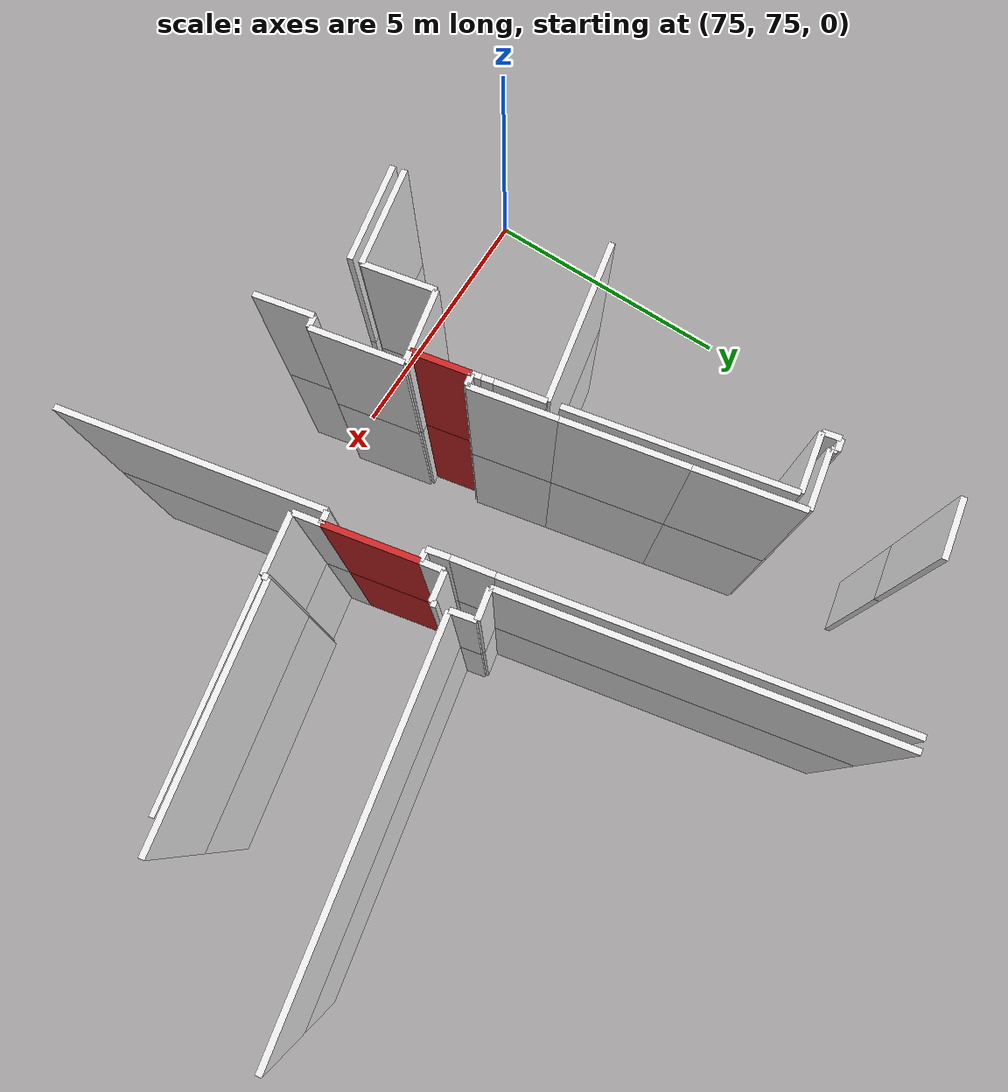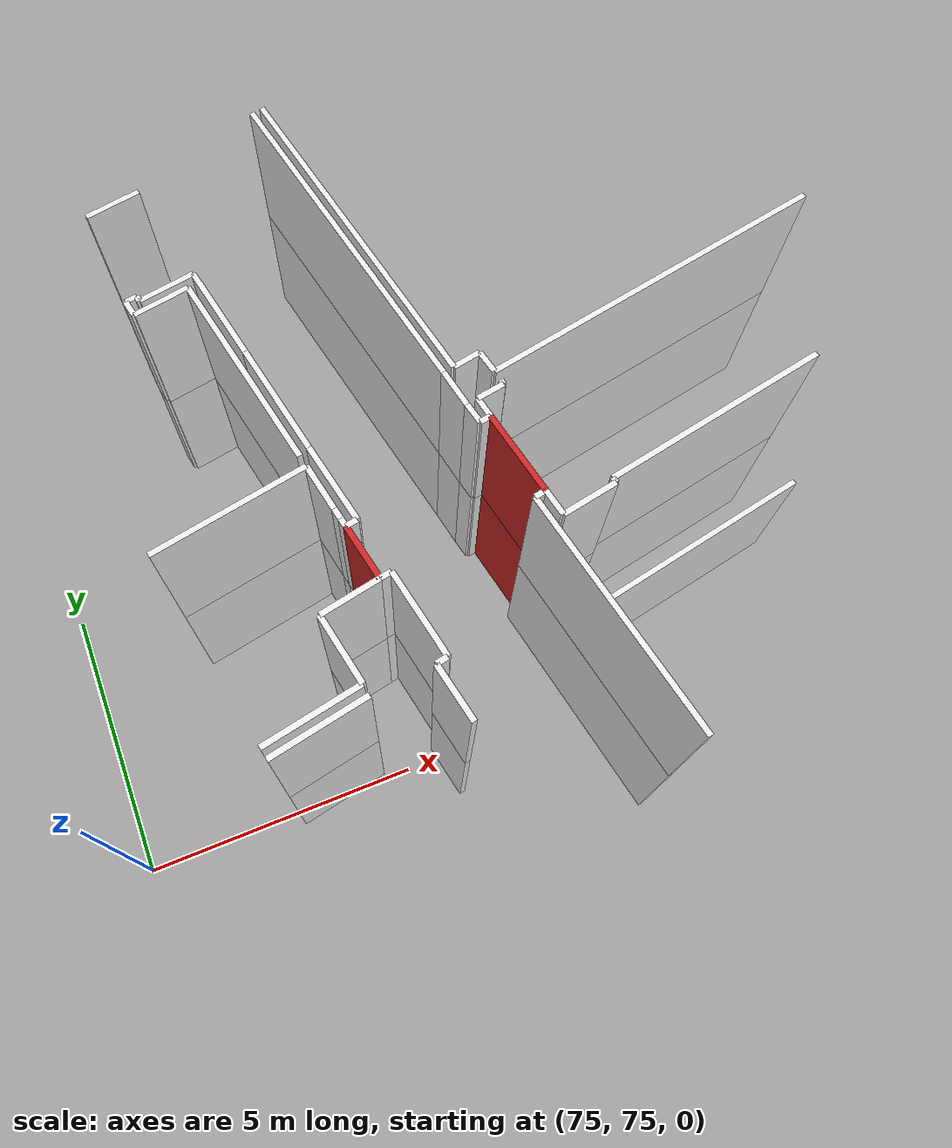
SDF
<sdf version="1.6">
 <world name="default">
  <model name="wall_80.2_77.2_1.5">
   <static>true</static>
   <pose>80.19499999997788 77.22500000009313 1.5 0 0 -1.3773690000310248</pose>
   <link name="link">
    <visual name="visual">
     <geometry><box><size>0.9884331031966657 0.1 3</size></box></geometry>
     <material>
      <script><uri>file://media/materials/scripts/gazebo.material</uri><name>Gazebo/Red</name></script>
     </material>
    </visual>
    <collision name="collision"><geometry><box><size>0.9884331031966657 0.1 3</size></box></geometry></collision>
   </link>
  </model>
  <model name="wall_83.0_77.9_1.5">
   <static>true</static>
   <pose>83.01999999998952 77.89500000001863 1.5 0 0 -1.3721104451170056</pose>
   <link name="link">
    <visual name="visual">
     <geometry><box><size>1.51990131280261 0.1 3</size></box></geometry>
     <material>
      <script><uri>file://media/materials/scripts/gazebo.material</uri><name>Gazebo/Red</name></script>
     </material>
    </visual>
    <collision name="collision"><geometry><box><size>1.51990131280261 0.1 3</size></box></geometry></collision>
   </link>
  </model>
  <model name="wall_80.2_77.2_4.5">
   <static>true</static>
   <pose>80.19499999997788 77.22500000009313 4.5 0 0 -1.3773690000310248</pose>
   <link name="link">
    <visual name="visual">
     <geometry><box><size>0.9884331031966657 0.1 3</size></box></geometry>
     <material>
      <script><uri>file://media/materials/scripts/gazebo.material</uri><name>Gazebo/Red</name></script>
     </material>
    </visual>
    <collision name="collision"><geometry><box><size>0.9884331031966657 0.1 3</size></box></geometry></collision>
   </link>
  </model>
  <model name="wall_83.0_77.9_4.5">
   <static>true</static>
   <pose>83.01999999998952 77.89500000001863 4.5 0 0 -1.3721104451170056</pose>
   <link name="link">
    <visual name="visual">
     <geometry><box><size>1.51990131280261 0.1 3</size></box></geometry>
     <material>
      <script><uri>file://media/materials/scripts/gazebo.material</uri><name>Gazebo/Red</name></script>
     </material>
    </visual>
    <collision name="collision"><geometry><box><size>1.51990131280261 0.1 3</size></box></geometry></collision>
   </link>
  </model>
  <model name="wall_79.8_76.6_1.5">
   <static>true</static>
   <pose>79.77499999999418 76.63500000000931 1.5 0 0 -2.9404657673681704</pose>
   <link name="link">
    <visual name="visual">
     <geometry><box><size>1.0511898021373587 0.1 3</size></box></geometry>
     <material>
      <script><uri>file://media/materials/scripts/gazebo.material</uri><name>Gazebo/White</name></script>
     </material>
    </visual>
    <collision name="collision"><geometry><box><size>1.0511898021373587 0.1 3</size></box></geometry></collision>
   </link>
  </model>
  <model name="wall_79.4_75.9_1.5">
   <static>true</static>
   <pose>79.38000000000466 75.92999999993481 1.5 0 0 -1.3734007669077033</pose>
   <link name="link">
    <visual name="visual">
     <geometry><box><size>1.2237646829864708 0.1 3</size></box></geometry>
     <material>
      <script><uri>file://media/materials/scripts/gazebo.material</uri><name>Gazebo/White</name></script>
     </material>
    </visual>
    <collision name="collision"><geometry><box><size>1.2237646829864708 0.1 3</size></box></geometry></collision>
   </link>
  </model>
  <model name="wall_78.7_75.2_1.5">
   <static>true</static>
   <pose>78.66500000000815 75.16500000003725 1.5 0 0 -2.946501237082923</pose>
   <link name="link">
    <visual name="visual">
     <geometry><box><size>1.7022925717968513 0.1 3</size></box></geometry>
     <material>
      <script><uri>file://media/materials/scripts/gazebo.material</uri><name>Gazebo/White</name></script>
     </material>
    </visual>
    <collision name="collision"><geometry><box><size>1.7022925717968513 0.1 3</size></box></geometry></collision>
   </link>
  </model>
  <model name="wall_78.5_78.6_1.5">
   <static>true</static>
   <pose>78.51999999998952 78.61499999999069 1.5 0 0 0.19383178298877288</pose>
   <link name="link">
    <visual name="visual">
     <geometry><box><size>2.7515268488324223 0.1 3</size></box></geometry>
     <material>
      <script><uri>file://media/materials/scripts/gazebo.material</uri><name>Gazebo/White</name></script>
     </material>
    </visual>
    <collision name="collision"><geometry><box><size>2.7515268488324223 0.1 3</size></box></geometry></collision>
   </link>
  </model>
  <model name="wall_80.0_78.5_1.5">
   <static>true</static>
   <pose>79.95000000001164 78.46499999985099 1.5 0 0 -1.3803612113601613</pose>
   <link name="link">
    <visual name="visual">
     <geometry><box><size>0.8452810184394953 0.1 3</size></box></geometry>
     <material>
      <script><uri>file://media/materials/scripts/gazebo.material</uri><name>Gazebo/White</name></script>
     </material>
    </visual>
    <collision name="collision"><geometry><box><size>0.8452810184394953 0.1 3</size></box></geometry></collision>
   </link>
  </model>
  <model name="wall_80.1_78.0_1.5">
   <static>true</static>
   <pose>80.05000000001746 77.95499999984168 1.5 0 0 -1.363300100406013</pose>
   <link name="link">
    <visual name="visual">
     <geometry><box><size>0.19416487833047835 0.1 3</size></box></geometry>
     <material>
      <script><uri>file://media/materials/scripts/gazebo.material</uri><name>Gazebo/White</name></script>
     </material>
    </visual>
    <collision name="collision"><geometry><box><size>0.19416487833047835 0.1 3</size></box></geometry></collision>
   </link>
  </model>
  <model name="wall_80.1_77.8_1.5">
   <static>true</static>
   <pose>80.08499999999185 77.78499999991618 1.5 0 0 -1.373400767019641</pose>
   <link name="link">
    <visual name="visual">
     <geometry><box><size>0.15297058531052382 0.1 3</size></box></geometry>
     <material>
      <script><uri>file://media/materials/scripts/gazebo.material</uri><name>Gazebo/White</name></script>
     </material>
    </visual>
    <collision name="collision"><geometry><box><size>0.15297058531052382 0.1 3</size></box></geometry></collision>
   </link>
  </model>
  <model name="wall_79.5_80.9_1.5">
   <static>true</static>
   <pose>79.46499999999651 80.88500000000931 1.5 0 0 1.7703218088940849</pose>
   <link name="link">
    <visual name="visual">
     <geometry><box><size>3.683069372020626 0.1 3</size></box></geometry>
     <material>
      <script><uri>file://media/materials/scripts/gazebo.material</uri><name>Gazebo/White</name></script>
     </material>
    </visual>
    <collision name="collision"><geometry><box><size>3.683069372020626 0.1 3</size></box></geometry></collision>
   </link>
  </model>
  <model name="wall_78.6_82.6_1.5">
   <static>true</static>
   <pose>78.60999999998603 82.59499999997206 1.5 0 0 -2.950090935171577</pose>
   <link name="link">
    <visual name="visual">
     <geometry><box><size>0.9982484660355146 0.1 3</size></box></geometry>
     <material>
      <script><uri>file://media/materials/scripts/gazebo.material</uri><name>Gazebo/White</name></script>
     </material>
    </visual>
    <collision name="collision"><geometry><box><size>0.9982484660355146 0.1 3</size></box></geometry></collision>
   </link>
  </model>
  <model name="wall_78.1_82.6_1.5">
   <static>true</static>
   <pose>78.08999999999651 82.64500000001863 1.5 0 0 1.7748143063542596</pose>
   <link name="link">
    <visual name="visual">
     <geometry><box><size>0.2961418579352255 0.1 3</size></box></geometry>
     <material>
      <script><uri>file://media/materials/scripts/gazebo.material</uri><name>Gazebo/White</name></script>
     </material>
    </visual>
    <collision name="collision"><geometry><box><size>0.2961418579352255 0.1 3</size></box></geometry></collision>
   </link>
  </model>
  <model name="wall_78.7_75.0_1.5">
   <static>true</static>
   <pose>78.7049999999872 74.97500000009313 1.5 0 0 -2.946501237082923</pose>
   <link name="link">
    <visual name="visual">
     <geometry><box><size>1.7022925717968513 0.1 3</size></box></geometry>
     <material>
      <script><uri>file://media/materials/scripts/gazebo.material</uri><name>Gazebo/White</name></script>
     </material>
    </visual>
    <collision name="collision"><geometry><box><size>1.7022925717968513 0.1 3</size></box></geometry></collision>
   </link>
  </model>
  <model name="wall_85.8_76.3_1.5">
   <static>true</static>
   <pose>85.83499999999185 76.28499999991618 1.5 0 0 -2.946597089187742</pose>
   <link name="link">
    <visual name="visual">
     <geometry><box><size>4.902917498739577 0.1 3</size></box></geometry>
     <material>
      <script><uri>file://media/materials/scripts/gazebo.material</uri><name>Gazebo/White</name></script>
     </material>
    </visual>
    <collision name="collision"><geometry><box><size>4.902917498739577 0.1 3</size></box></geometry></collision>
   </link>
  </model>
  <model name="wall_80.4_76.8_1.5">
   <static>true</static>
   <pose>80.38999999998487 76.76000000000931 1.5 0 0 -2.944197095810762</pose>
   <link name="link">
    <visual name="visual">
     <geometry><box><size>0.20396078047110908 0.1 3</size></box></geometry>
     <material>
      <script><uri>file://media/materials/scripts/gazebo.material</uri><name>Gazebo/White</name></script>
     </material>
    </visual>
    <collision name="collision"><geometry><box><size>0.20396078047110908 0.1 3</size></box></geometry></collision>
   </link>
  </model>
  <model name="wall_80.2_77.7_1.5">
   <static>true</static>
   <pose>80.19999999998254 77.72999999998137 1.5 0 0 0.19739556001778746</pose>
   <link name="link">
    <visual name="visual">
     <geometry><box><size>0.20396078056243275 0.1 3</size></box></geometry>
     <material>
      <script><uri>file://media/materials/scripts/gazebo.material</uri><name>Gazebo/White</name></script>
     </material>
    </visual>
    <collision name="collision"><geometry><box><size>0.20396078056243275 0.1 3</size></box></geometry></collision>
   </link>
  </model>
  <model name="wall_80.2_78.5_1.5">
   <static>true</static>
   <pose>80.15499999999884 78.45999999996275 1.5 0 0 1.772251404259705</pose>
   <link name="link">
    <visual name="visual">
     <geometry><box><size>1.449310180663977 0.1 3</size></box></geometry>
     <material>
      <script><uri>file://media/materials/scripts/gazebo.material</uri><name>Gazebo/White</name></script>
     </material>
    </visual>
    <collision name="collision"><geometry><box><size>1.449310180663977 0.1 3</size></box></geometry></collision>
   </link>
  </model>
  <model name="wall_79.8_80.2_1.5">
   <static>true</static>
   <pose>79.80999999999767 80.17500000004657 1.5 0 0 1.7672349491259145</pose>
   <link name="link">
    <visual name="visual">
     <geometry><box><size>2.0494145507905532 0.1 3</size></box></geometry>
     <material>
      <script><uri>file://media/materials/scripts/gazebo.material</uri><name>Gazebo/White</name></script>
     </material>
    </visual>
    <collision name="collision"><geometry><box><size>2.0494145507905532 0.1 3</size></box></geometry></collision>
   </link>
  </model>
  <model name="wall_79.4_82.1_1.5">
   <static>true</static>
   <pose>79.43499999999767 82.05000000004657 1.5 0 0 1.7692968585848012</pose>
   <link name="link">
    <visual name="visual">
     <geometry><box><size>1.7748521062728133 0.1 3</size></box></geometry>
     <material>
      <script><uri>file://media/materials/scripts/gazebo.material</uri><name>Gazebo/White</name></script>
     </material>
    </visual>
    <collision name="collision"><geometry><box><size>1.7748521062728133 0.1 3</size></box></geometry></collision>
   </link>
  </model>
  <model name="wall_78.8_82.8_1.5">
   <static>true</static>
   <pose>78.77000000001863 82.82499999995343 1.5 0 0 -2.950090935171577</pose>
   <link name="link">
    <visual name="visual">
     <geometry><box><size>0.9982484660355146 0.1 3</size></box></geometry>
     <material>
      <script><uri>file://media/materials/scripts/gazebo.material</uri><name>Gazebo/White</name></script>
     </material>
    </visual>
    <collision name="collision"><geometry><box><size>0.9982484660355146 0.1 3</size></box></geometry></collision>
   </link>
  </model>
  <model name="wall_78.3_82.8_1.5">
   <static>true</static>
   <pose>78.27000000001863 82.78000000002794 1.5 0 0 1.7681918866447774</pose>
   <link name="link">
    <visual name="visual">
     <geometry><box><size>0.10198039036683233 0.1 3</size></box></geometry>
     <material>
      <script><uri>file://media/materials/scripts/gazebo.material</uri><name>Gazebo/White</name></script>
     </material>
    </visual>
    <collision name="collision"><geometry><box><size>0.10198039036683233 0.1 3</size></box></geometry></collision>
   </link>
  </model>
  <model name="wall_78.2_82.8_1.5">
   <static>true</static>
   <pose>78.16000000000349 82.81000000005588 1.5 0 0 -2.9441970935720057</pose>
   <link name="link">
    <visual name="visual">
     <geometry><box><size>0.20396078056243275 0.1 3</size></box></geometry>
     <material>
      <script><uri>file://media/materials/scripts/gazebo.material</uri><name>Gazebo/White</name></script>
     </material>
    </visual>
    <collision name="collision"><geometry><box><size>0.20396078056243275 0.1 3</size></box></geometry></collision>
   </link>
  </model>
  <model name="wall_78.4_84.8_1.5">
   <static>true</static>
   <pose>78.38000000000466 84.78499999991618 1.5 0 0 0.19150171841821614</pose>
   <link name="link">
    <visual name="visual">
     <geometry><box><size>0.9982484660355146 0.1 3</size></box></geometry>
     <material>
      <script><uri>file://media/materials/scripts/gazebo.material</uri><name>Gazebo/White</name></script>
     </material>
    </visual>
    <collision name="collision"><geometry><box><size>0.9982484660355146 0.1 3</size></box></geometry></collision>
   </link>
  </model>
  <model name="wall_81.8_82.7_1.5">
   <static>true</static>
   <pose>81.84999999997672 82.72999999998137 1.5 0 0 -1.3721523281490677</pose>
   <link name="link">
    <visual name="visual">
     <geometry><box><size>6.283565866752152 0.1 3</size></box></geometry>
     <material>
      <script><uri>file://media/materials/scripts/gazebo.material</uri><name>Gazebo/White</name></script>
     </material>
    </visual>
    <collision name="collision"><geometry><box><size>6.283565866752152 0.1 3</size></box></geometry></collision>
   </link>
  </model>
  <model name="wall_82.5_79.3_1.5">
   <static>true</static>
   <pose>82.53499999997439 79.31000000005588 1.5 0 0 -1.3818991458298349</pose>
   <link name="link">
    <visual name="visual">
     <geometry><box><size>0.6923149569349915 0.1 3</size></box></geometry>
     <material>
      <script><uri>file://media/materials/scripts/gazebo.material</uri><name>Gazebo/White</name></script>
     </material>
    </visual>
    <collision name="collision"><geometry><box><size>0.6923149569349915 0.1 3</size></box></geometry></collision>
   </link>
  </model>
  <model name="wall_82.6_78.8_1.5">
   <static>true</static>
   <pose>82.63999999998487 78.79000000003725 1.5 0 0 -1.3521273810750338</pose>
   <link name="link">
    <visual name="visual">
     <geometry><box><size>0.3687817786225433 0.1 3</size></box></geometry>
     <material>
      <script><uri>file://media/materials/scripts/gazebo.material</uri><name>Gazebo/White</name></script>
     </material>
    </visual>
    <collision name="collision"><geometry><box><size>0.3687817786225433 0.1 3</size></box></geometry></collision>
   </link>
  </model>
  <model name="wall_82.8_78.6_1.5">
   <static>true</static>
   <pose>82.77499999999418 78.625 1.5 0 0 0.15660187831921837</pose>
   <link name="link">
    <visual name="visual">
     <geometry><box><size>0.19235384065968367 0.1 3</size></box></geometry>
     <material>
      <script><uri>file://media/materials/scripts/gazebo.material</uri><name>Gazebo/White</name></script>
     </material>
    </visual>
    <collision name="collision"><geometry><box><size>0.19235384065968367 0.1 3</size></box></geometry></collision>
   </link>
  </model>
  <model name="wall_83.1_77.1_1.5">
   <static>true</static>
   <pose>83.06999999997788 77.12999999988824 1.5 0 0 -2.9441970935720057</pose>
   <link name="link">
    <visual name="visual">
     <geometry><box><size>0.20396078056243275 0.1 3</size></box></geometry>
     <material>
      <script><uri>file://media/materials/scripts/gazebo.material</uri><name>Gazebo/White</name></script>
     </material>
    </visual>
    <collision name="collision"><geometry><box><size>0.20396078056243275 0.1 3</size></box></geometry></collision>
   </link>
  </model>
  <model name="wall_83.4_75.0_1.5">
   <static>true</static>
   <pose>83.39499999998952 74.9749999998603 1.5 0 0 -1.3743016675951543</pose>
   <link name="link">
    <visual name="visual">
     <geometry><box><size>4.353779966904442 0.1 3</size></box></geometry>
     <material>
      <script><uri>file://media/materials/scripts/gazebo.material</uri><name>Gazebo/White</name></script>
     </material>
    </visual>
    <collision name="collision"><geometry><box><size>4.353779966904442 0.1 3</size></box></geometry></collision>
   </link>
  </model>
  <model name="wall_80.7_74.7_1.5">
   <static>true</static>
   <pose>80.69000000000233 74.7300000002142 1.5 0 0 1.7721134351276446</pose>
   <link name="link">
    <visual name="visual">
     <geometry><box><size>1.0001999799764374 0.1 3</size></box></geometry>
     <material>
      <script><uri>file://media/materials/scripts/gazebo.material</uri><name>Gazebo/White</name></script>
     </material>
    </visual>
    <collision name="collision"><geometry><box><size>1.0001999799764374 0.1 3</size></box></geometry></collision>
   </link>
  </model>
  <model name="wall_80.7_75.2_1.5">
   <static>true</static>
   <pose>80.69000000000233 75.23999999999069 1.5 0 0 0.19739555783500018</pose>
   <link name="link">
    <visual name="visual">
     <geometry><box><size>0.20396078041403173 0.1 3</size></box></geometry>
     <material>
      <script><uri>file://media/materials/scripts/gazebo.material</uri><name>Gazebo/White</name></script>
     </material>
    </visual>
    <collision name="collision"><geometry><box><size>0.20396078041403173 0.1 3</size></box></geometry></collision>
   </link>
  </model>
  <model name="wall_80.6_76.0_1.5">
   <static>true</static>
   <pose>80.63999999998487 76.0199999997858 1.5 0 0 1.765660246474069</pose>
   <link name="link">
    <visual name="visual">
     <geometry><box><size>1.5493224325651649 0.1 3</size></box></geometry>
     <material>
      <script><uri>file://media/materials/scripts/gazebo.material</uri><name>Gazebo/White</name></script>
     </material>
    </visual>
    <collision name="collision"><geometry><box><size>1.5493224325651649 0.1 3</size></box></geometry></collision>
   </link>
  </model>
  <model name="wall_86.2_77.4_1.5">
   <static>true</static>
   <pose>86.22999999998137 77.37000000011176 1.5 0 0 -2.9451540312923132</pose>
   <link name="link">
    <visual name="visual">
     <geometry><box><size>4.098829101078957 0.1 3</size></box></geometry>
     <material>
      <script><uri>file://media/materials/scripts/gazebo.material</uri><name>Gazebo/White</name></script>
     </material>
    </visual>
    <collision name="collision"><geometry><box><size>4.098829101078957 0.1 3</size></box></geometry></collision>
   </link>
  </model>
  <model name="wall_84.2_76.9_1.5">
   <static>true</static>
   <pose>84.22999999998137 76.92500000004657 1.5 0 0 -1.3521273814687915</pose>
   <link name="link">
    <visual name="visual">
     <geometry><box><size>0.09219544488607884 0.1 3</size></box></geometry>
     <material>
      <script><uri>file://media/materials/scripts/gazebo.material</uri><name>Gazebo/White</name></script>
     </material>
    </visual>
    <collision name="collision"><geometry><box><size>0.09219544488607884 0.1 3</size></box></geometry></collision>
   </link>
  </model>
  <model name="wall_83.8_76.8_1.5">
   <static>true</static>
   <pose>83.75 76.78499999991618 1.5 0 0 -2.950090935171577</pose>
   <link name="link">
    <visual name="visual">
     <geometry><box><size>0.9982484660355146 0.1 3</size></box></geometry>
     <material>
      <script><uri>file://media/materials/scripts/gazebo.material</uri><name>Gazebo/White</name></script>
     </material>
    </visual>
    <collision name="collision"><geometry><box><size>0.9982484660355146 0.1 3</size></box></geometry></collision>
   </link>
  </model>
  <model name="wall_83.2_76.9_1.5">
   <static>true</static>
   <pose>83.21499999999651 76.9199999999255 1.5 0 0 1.7640078107115875</pose>
   <link name="link">
    <visual name="visual">
     <geometry><box><size>0.4687216657786766 0.1 3</size></box></geometry>
     <material>
      <script><uri>file://media/materials/scripts/gazebo.material</uri><name>Gazebo/White</name></script>
     </material>
    </visual>
    <collision name="collision"><geometry><box><size>0.4687216657786766 0.1 3</size></box></geometry></collision>
   </link>
  </model>
  <model name="wall_82.8_78.8_1.5">
   <static>true</static>
   <pose>82.83499999999185 78.82499999995343 1.5 0 0 1.7577755969067386</pose>
   <link name="link">
    <visual name="visual">
     <geometry><box><size>0.37656340732881893 0.1 3</size></box></geometry>
     <material>
      <script><uri>file://media/materials/scripts/gazebo.material</uri><name>Gazebo/White</name></script>
     </material>
    </visual>
    <collision name="collision"><geometry><box><size>0.37656340732881893 0.1 3</size></box></geometry></collision>
   </link>
  </model>
  <model name="wall_83.0_79.1_1.5">
   <static>true</static>
   <pose>83.0449999999837 79.05499999993481 1.5 0 0 0.18164883062852336</pose>
   <link name="link">
    <visual name="visual">
     <geometry><box><size>0.49819674833128924 0.1 3</size></box></geometry>
     <material>
      <script><uri>file://media/materials/scripts/gazebo.material</uri><name>Gazebo/White</name></script>
     </material>
    </visual>
    <collision name="collision"><geometry><box><size>0.49819674833128924 0.1 3</size></box></geometry></collision>
   </link>
  </model>
  <model name="wall_83.3_79.1_1.5">
   <static>true</static>
   <pose>83.27999999999884 79.14000000013039 1.5 0 0 1.8157749892369648</pose>
   <link name="link">
    <visual name="visual">
     <geometry><box><size>0.08246211257503461 0.1 3</size></box></geometry>
     <material>
      <script><uri>file://media/materials/scripts/gazebo.material</uri><name>Gazebo/White</name></script>
     </material>
    </visual>
    <collision name="collision"><geometry><box><size>0.08246211257503461 0.1 3</size></box></geometry></collision>
   </link>
  </model>
  <model name="wall_82.0_82.8_1.5">
   <static>true</static>
   <pose>82.0449999999837 82.76500000013039 1.5 0 0 -1.3740242082613399</pose>
   <link name="link">
    <visual name="visual">
     <geometry><box><size>6.291406837825287 0.1 3</size></box></geometry>
     <material>
      <script><uri>file://media/materials/scripts/gazebo.material</uri><name>Gazebo/White</name></script>
     </material>
    </visual>
    <collision name="collision"><geometry><box><size>6.291406837825287 0.1 3</size></box></geometry></collision>
   </link>
  </model>
  <model name="wall_82.9_79.7_1.5">
   <static>true</static>
   <pose>82.90499999999884 79.72999999998137 1.5 0 0 0.20131710762522587</pose>
   <link name="link">
    <visual name="visual">
     <geometry><box><size>0.5000999899754156 0.1 3</size></box></geometry>
     <material>
      <script><uri>file://media/materials/scripts/gazebo.material</uri><name>Gazebo/White</name></script>
     </material>
    </visual>
    <collision name="collision"><geometry><box><size>0.5000999899754156 0.1 3</size></box></geometry></collision>
   </link>
  </model>
  <model name="wall_83.2_79.6_1.5">
   <static>true</static>
   <pose>83.19500000000698 79.57499999995343 1.5 0 0 -1.3547113544122191</pose>
   <link name="link">
    <visual name="visual">
     <geometry><box><size>0.41976183692003244 0.1 3</size></box></geometry>
     <material>
      <script><uri>file://media/materials/scripts/gazebo.material</uri><name>Gazebo/White</name></script>
     </material>
    </visual>
    <collision name="collision"><geometry><box><size>0.41976183692003244 0.1 3</size></box></geometry></collision>
   </link>
  </model>
  <model name="wall_86.4_80.0_1.5">
   <static>true</static>
   <pose>86.40499999999884 80.0 1.5 0 0 0.19648398303966225</pose>
   <link name="link">
    <visual name="visual">
     <geometry><box><size>6.454184688993883 0.1 3</size></box></geometry>
     <material>
      <script><uri>file://media/materials/scripts/gazebo.material</uri><name>Gazebo/White</name></script>
     </material>
    </visual>
    <collision name="collision"><geometry><box><size>6.454184688993883 0.1 3</size></box></geometry></collision>
   </link>
  </model>
  <model name="wall_79.8_76.6_4.5">
   <static>true</static>
   <pose>79.77499999999418 76.63500000000931 4.5 0 0 -2.9404657673681704</pose>
   <link name="link">
    <visual name="visual">
     <geometry><box><size>1.0511898021373587 0.1 3</size></box></geometry>
     <material>
      <script><uri>file://media/materials/scripts/gazebo.material</uri><name>Gazebo/White</name></script>
     </material>
    </visual>
    <collision name="collision"><geometry><box><size>1.0511898021373587 0.1 3</size></box></geometry></collision>
   </link>
  </model>
  <model name="wall_79.4_75.9_4.5">
   <static>true</static>
   <pose>79.38000000000466 75.92999999993481 4.5 0 0 -1.3734007669077033</pose>
   <link name="link">
    <visual name="visual">
     <geometry><box><size>1.2237646829864708 0.1 3</size></box></geometry>
     <material>
      <script><uri>file://media/materials/scripts/gazebo.material</uri><name>Gazebo/White</name></script>
     </material>
    </visual>
    <collision name="collision"><geometry><box><size>1.2237646829864708 0.1 3</size></box></geometry></collision>
   </link>
  </model>
  <model name="wall_78.7_75.2_4.5">
   <static>true</static>
   <pose>78.66500000000815 75.16500000003725 4.5 0 0 -2.946501237082923</pose>
   <link name="link">
    <visual name="visual">
     <geometry><box><size>1.7022925717968513 0.1 3</size></box></geometry>
     <material>
      <script><uri>file://media/materials/scripts/gazebo.material</uri><name>Gazebo/White</name></script>
     </material>
    </visual>
    <collision name="collision"><geometry><box><size>1.7022925717968513 0.1 3</size></box></geometry></collision>
   </link>
  </model>
  <model name="wall_78.5_78.6_4.5">
   <static>true</static>
   <pose>78.51999999998952 78.61499999999069 4.5 0 0 0.19383178298877288</pose>
   <link name="link">
    <visual name="visual">
     <geometry><box><size>2.7515268488324223 0.1 3</size></box></geometry>
     <material>
      <script><uri>file://media/materials/scripts/gazebo.material</uri><name>Gazebo/White</name></script>
     </material>
    </visual>
    <collision name="collision"><geometry><box><size>2.7515268488324223 0.1 3</size></box></geometry></collision>
   </link>
  </model>
  <model name="wall_80.0_78.5_4.5">
   <static>true</static>
   <pose>79.95000000001164 78.46499999985099 4.5 0 0 -1.3803612113601613</pose>
   <link name="link">
    <visual name="visual">
     <geometry><box><size>0.8452810184394953 0.1 3</size></box></geometry>
     <material>
      <script><uri>file://media/materials/scripts/gazebo.material</uri><name>Gazebo/White</name></script>
     </material>
    </visual>
    <collision name="collision"><geometry><box><size>0.8452810184394953 0.1 3</size></box></geometry></collision>
   </link>
  </model>
  <model name="wall_80.1_78.0_4.5">
   <static>true</static>
   <pose>80.05000000001746 77.95499999984168 4.5 0 0 -1.363300100406013</pose>
   <link name="link">
    <visual name="visual">
     <geometry><box><size>0.19416487833047835 0.1 3</size></box></geometry>
     <material>
      <script><uri>file://media/materials/scripts/gazebo.material</uri><name>Gazebo/White</name></script>
     </material>
    </visual>
    <collision name="collision"><geometry><box><size>0.19416487833047835 0.1 3</size></box></geometry></collision>
   </link>
  </model>
  <model name="wall_80.1_77.8_4.5">
   <static>true</static>
   <pose>80.08499999999185 77.78499999991618 4.5 0 0 -1.373400767019641</pose>
   <link name="link">
    <visual name="visual">
     <geometry><box><size>0.15297058531052382 0.1 3</size></box></geometry>
     <material>
      <script><uri>file://media/materials/scripts/gazebo.material</uri><name>Gazebo/White</name></script>
     </material>
    </visual>
    <collision name="collision"><geometry><box><size>0.15297058531052382 0.1 3</size></box></geometry></collision>
   </link>
  </model>
  <model name="wall_79.5_80.9_4.5">
   <static>true</static>
   <pose>79.46499999999651 80.88500000000931 4.5 0 0 1.7703218088940849</pose>
   <link name="link">
    <visual name="visual">
     <geometry><box><size>3.683069372020626 0.1 3</size></box></geometry>
     <material>
      <script><uri>file://media/materials/scripts/gazebo.material</uri><name>Gazebo/White</name></script>
     </material>
    </visual>
    <collision name="collision"><geometry><box><size>3.683069372020626 0.1 3</size></box></geometry></collision>
   </link>
  </model>
  <model name="wall_78.6_82.6_4.5">
   <static>true</static>
   <pose>78.60999999998603 82.59499999997206 4.5 0 0 -2.950090935171577</pose>
   <link name="link">
    <visual name="visual">
     <geometry><box><size>0.9982484660355146 0.1 3</size></box></geometry>
     <material>
      <script><uri>file://media/materials/scripts/gazebo.material</uri><name>Gazebo/White</name></script>
     </material>
    </visual>
    <collision name="collision"><geometry><box><size>0.9982484660355146 0.1 3</size></box></geometry></collision>
   </link>
  </model>
  <model name="wall_78.1_82.6_4.5">
   <static>true</static>
   <pose>78.08999999999651 82.64500000001863 4.5 0 0 1.7748143063542596</pose>
   <link name="link">
    <visual name="visual">
     <geometry><box><size>0.2961418579352255 0.1 3</size></box></geometry>
     <material>
      <script><uri>file://media/materials/scripts/gazebo.material</uri><name>Gazebo/White</name></script>
     </material>
    </visual>
    <collision name="collision"><geometry><box><size>0.2961418579352255 0.1 3</size></box></geometry></collision>
   </link>
  </model>
  <model name="wall_78.7_75.0_4.5">
   <static>true</static>
   <pose>78.7049999999872 74.97500000009313 4.5 0 0 -2.946501237082923</pose>
   <link name="link">
    <visual name="visual">
     <geometry><box><size>1.7022925717968513 0.1 3</size></box></geometry>
     <material>
      <script><uri>file://media/materials/scripts/gazebo.material</uri><name>Gazebo/White</name></script>
     </material>
    </visual>
    <collision name="collision"><geometry><box><size>1.7022925717968513 0.1 3</size></box></geometry></collision>
   </link>
  </model>
  <model name="wall_80.4_76.8_4.5">
   <static>true</static>
   <pose>80.38999999998487 76.76000000000931 4.5 0 0 -2.944197095810762</pose>
   <link name="link">
    <visual name="visual">
     <geometry><box><size>0.20396078047110908 0.1 3</size></box></geometry>
     <material>
      <script><uri>file://media/materials/scripts/gazebo.material</uri><name>Gazebo/White</name></script>
     </material>
    </visual>
    <collision name="collision"><geometry><box><size>0.20396078047110908 0.1 3</size></box></geometry></collision>
   </link>
  </model>
  <model name="wall_80.2_77.7_4.5">
   <static>true</static>
   <pose>80.19999999998254 77.72999999998137 4.5 0 0 0.19739556001778746</pose>
   <link name="link">
    <visual name="visual">
     <geometry><box><size>0.20396078056243275 0.1 3</size></box></geometry>
     <material>
      <script><uri>file://media/materials/scripts/gazebo.material</uri><name>Gazebo/White</name></script>
     </material>
    </visual>
    <collision name="collision"><geometry><box><size>0.20396078056243275 0.1 3</size></box></geometry></collision>
   </link>
  </model>
  <model name="wall_80.2_78.5_4.5">
   <static>true</static>
   <pose>80.15499999999884 78.45999999996275 4.5 0 0 1.772251404259705</pose>
   <link name="link">
    <visual name="visual">
     <geometry><box><size>1.449310180663977 0.1 3</size></box></geometry>
     <material>
      <script><uri>file://media/materials/scripts/gazebo.material</uri><name>Gazebo/White</name></script>
     </material>
    </visual>
    <collision name="collision"><geometry><box><size>1.449310180663977 0.1 3</size></box></geometry></collision>
   </link>
  </model>
  <model name="wall_79.8_80.2_4.5">
   <static>true</static>
   <pose>79.80999999999767 80.17500000004657 4.5 0 0 1.7672349491259145</pose>
   <link name="link">
    <visual name="visual">
     <geometry><box><size>2.0494145507905532 0.1 3</size></box></geometry>
     <material>
      <script><uri>file://media/materials/scripts/gazebo.material</uri><name>Gazebo/White</name></script>
     </material>
    </visual>
    <collision name="collision"><geometry><box><size>2.0494145507905532 0.1 3</size></box></geometry></collision>
   </link>
  </model>
  <model name="wall_79.4_82.1_4.5">
   <static>true</static>
   <pose>79.43499999999767 82.05000000004657 4.5 0 0 1.7692968585848012</pose>
   <link name="link">
    <visual name="visual">
     <geometry><box><size>1.7748521062728133 0.1 3</size></box></geometry>
     <material>
      <script><uri>file://media/materials/scripts/gazebo.material</uri><name>Gazebo/White</name></script>
     </material>
    </visual>
    <collision name="collision"><geometry><box><size>1.7748521062728133 0.1 3</size></box></geometry></collision>
   </link>
  </model>
  <model name="wall_78.8_82.8_4.5">
   <static>true</static>
   <pose>78.77000000001863 82.82499999995343 4.5 0 0 -2.950090935171577</pose>
   <link name="link">
    <visual name="visual">
     <geometry><box><size>0.9982484660355146 0.1 3</size></box></geometry>
     <material>
      <script><uri>file://media/materials/scripts/gazebo.material</uri><name>Gazebo/White</name></script>
     </material>
    </visual>
    <collision name="collision"><geometry><box><size>0.9982484660355146 0.1 3</size></box></geometry></collision>
   </link>
  </model>
  <model name="wall_78.3_82.8_4.5">
   <static>true</static>
   <pose>78.27000000001863 82.78000000002794 4.5 0 0 1.7681918866447774</pose>
   <link name="link">
    <visual name="visual">
     <geometry><box><size>0.10198039036683233 0.1 3</size></box></geometry>
     <material>
      <script><uri>file://media/materials/scripts/gazebo.material</uri><name>Gazebo/White</name></script>
     </material>
    </visual>
    <collision name="collision"><geometry><box><size>0.10198039036683233 0.1 3</size></box></geometry></collision>
   </link>
  </model>
  <model name="wall_78.2_82.8_4.5">
   <static>true</static>
   <pose>78.16000000000349 82.81000000005588 4.5 0 0 -2.9441970935720057</pose>
   <link name="link">
    <visual name="visual">
     <geometry><box><size>0.20396078056243275 0.1 3</size></box></geometry>
     <material>
      <script><uri>file://media/materials/scripts/gazebo.material</uri><name>Gazebo/White</name></script>
     </material>
    </visual>
    <collision name="collision"><geometry><box><size>0.20396078056243275 0.1 3</size></box></geometry></collision>
   </link>
  </model>
  <model name="wall_78.4_84.8_4.5">
   <static>true</static>
   <pose>78.38000000000466 84.78499999991618 4.5 0 0 0.19150171841821614</pose>
   <link name="link">
    <visual name="visual">
     <geometry><box><size>0.9982484660355146 0.1 3</size></box></geometry>
     <material>
      <script><uri>file://media/materials/scripts/gazebo.material</uri><name>Gazebo/White</name></script>
     </material>
    </visual>
    <collision name="collision"><geometry><box><size>0.9982484660355146 0.1 3</size></box></geometry></collision>
   </link>
  </model>
  <model name="wall_81.8_82.7_4.5">
   <static>true</static>
   <pose>81.84999999997672 82.72999999998137 4.5 0 0 -1.3721523281490677</pose>
   <link name="link">
    <visual name="visual">
     <geometry><box><size>6.283565866752152 0.1 3</size></box></geometry>
     <material>
      <script><uri>file://media/materials/scripts/gazebo.material</uri><name>Gazebo/White</name></script>
     </material>
    </visual>
    <collision name="collision"><geometry><box><size>6.283565866752152 0.1 3</size></box></geometry></collision>
   </link>
  </model>
  <model name="wall_82.5_79.3_4.5">
   <static>true</static>
   <pose>82.53499999997439 79.31000000005588 4.5 0 0 -1.3818991458298349</pose>
   <link name="link">
    <visual name="visual">
     <geometry><box><size>0.6923149569349915 0.1 3</size></box></geometry>
     <material>
      <script><uri>file://media/materials/scripts/gazebo.material</uri><name>Gazebo/White</name></script>
     </material>
    </visual>
    <collision name="collision"><geometry><box><size>0.6923149569349915 0.1 3</size></box></geometry></collision>
   </link>
  </model>
  <model name="wall_82.6_78.8_4.5">
   <static>true</static>
   <pose>82.63999999998487 78.79000000003725 4.5 0 0 -1.3521273810750338</pose>
   <link name="link">
    <visual name="visual">
     <geometry><box><size>0.3687817786225433 0.1 3</size></box></geometry>
     <material>
      <script><uri>file://media/materials/scripts/gazebo.material</uri><name>Gazebo/White</name></script>
     </material>
    </visual>
    <collision name="collision"><geometry><box><size>0.3687817786225433 0.1 3</size></box></geometry></collision>
   </link>
  </model>
  <model name="wall_82.8_78.6_4.5">
   <static>true</static>
   <pose>82.77499999999418 78.625 4.5 0 0 0.15660187831921837</pose>
   <link name="link">
    <visual name="visual">
     <geometry><box><size>0.19235384065968367 0.1 3</size></box></geometry>
     <material>
      <script><uri>file://media/materials/scripts/gazebo.material</uri><name>Gazebo/White</name></script>
     </material>
    </visual>
    <collision name="collision"><geometry><box><size>0.19235384065968367 0.1 3</size></box></geometry></collision>
   </link>
  </model>
  <model name="wall_83.1_77.1_4.5">
   <static>true</static>
   <pose>83.06999999997788 77.12999999988824 4.5 0 0 -2.9441970935720057</pose>
   <link name="link">
    <visual name="visual">
     <geometry><box><size>0.20396078056243275 0.1 3</size></box></geometry>
     <material>
      <script><uri>file://media/materials/scripts/gazebo.material</uri><name>Gazebo/White</name></script>
     </material>
    </visual>
    <collision name="collision"><geometry><box><size>0.20396078056243275 0.1 3</size></box></geometry></collision>
   </link>
  </model>
  <model name="wall_83.4_75.0_4.5">
   <static>true</static>
   <pose>83.39499999998952 74.9749999998603 4.5 0 0 -1.3743016675951543</pose>
   <link name="link">
    <visual name="visual">
     <geometry><box><size>4.353779966904442 0.1 3</size></box></geometry>
     <material>
      <script><uri>file://media/materials/scripts/gazebo.material</uri><name>Gazebo/White</name></script>
     </material>
    </visual>
    <collision name="collision"><geometry><box><size>4.353779966904442 0.1 3</size></box></geometry></collision>
   </link>
  </model>
  <model name="wall_80.7_74.7_4.5">
   <static>true</static>
   <pose>80.69000000000233 74.7300000002142 4.5 0 0 1.7721134351276446</pose>
   <link name="link">
    <visual name="visual">
     <geometry><box><size>1.0001999799764374 0.1 3</size></box></geometry>
     <material>
      <script><uri>file://media/materials/scripts/gazebo.material</uri><name>Gazebo/White</name></script>
     </material>
    </visual>
    <collision name="collision"><geometry><box><size>1.0001999799764374 0.1 3</size></box></geometry></collision>
   </link>
  </model>
  <model name="wall_80.7_75.2_4.5">
   <static>true</static>
   <pose>80.69000000000233 75.23999999999069 4.5 0 0 0.19739555783500018</pose>
   <link name="link">
    <visual name="visual">
     <geometry><box><size>0.20396078041403173 0.1 3</size></box></geometry>
     <material>
      <script><uri>file://media/materials/scripts/gazebo.material</uri><name>Gazebo/White</name></script>
     </material>
    </visual>
    <collision name="collision"><geometry><box><size>0.20396078041403173 0.1 3</size></box></geometry></collision>
   </link>
  </model>
  <model name="wall_80.6_76.0_4.5">
   <static>true</static>
   <pose>80.63999999998487 76.0199999997858 4.5 0 0 1.765660246474069</pose>
   <link name="link">
    <visual name="visual">
     <geometry><box><size>1.5493224325651649 0.1 3</size></box></geometry>
     <material>
      <script><uri>file://media/materials/scripts/gazebo.material</uri><name>Gazebo/White</name></script>
     </material>
    </visual>
    <collision name="collision"><geometry><box><size>1.5493224325651649 0.1 3</size></box></geometry></collision>
   </link>
  </model>
  <model name="wall_86.2_77.4_4.5">
   <static>true</static>
   <pose>86.22999999998137 77.37000000011176 4.5 0 0 -2.9451540312923132</pose>
   <link name="link">
    <visual name="visual">
     <geometry><box><size>4.098829101078957 0.1 3</size></box></geometry>
     <material>
      <script><uri>file://media/materials/scripts/gazebo.material</uri><name>Gazebo/White</name></script>
     </material>
    </visual>
    <collision name="collision"><geometry><box><size>4.098829101078957 0.1 3</size></box></geometry></collision>
   </link>
  </model>
  <model name="wall_84.2_76.9_4.5">
   <static>true</static>
   <pose>84.22999999998137 76.92500000004657 4.5 0 0 -1.3521273814687915</pose>
   <link name="link">
    <visual name="visual">
     <geometry><box><size>0.09219544488607884 0.1 3</size></box></geometry>
     <material>
      <script><uri>file://media/materials/scripts/gazebo.material</uri><name>Gazebo/White</name></script>
     </material>
    </visual>
    <collision name="collision"><geometry><box><size>0.09219544488607884 0.1 3</size></box></geometry></collision>
   </link>
  </model>
  <model name="wall_83.8_76.8_4.5">
   <static>true</static>
   <pose>83.75 76.78499999991618 4.5 0 0 -2.950090935171577</pose>
   <link name="link">
    <visual name="visual">
     <geometry><box><size>0.9982484660355146 0.1 3</size></box></geometry>
     <material>
      <script><uri>file://media/materials/scripts/gazebo.material</uri><name>Gazebo/White</name></script>
     </material>
    </visual>
    <collision name="collision"><geometry><box><size>0.9982484660355146 0.1 3</size></box></geometry></collision>
   </link>
  </model>
  <model name="wall_83.2_76.9_4.5">
   <static>true</static>
   <pose>83.21499999999651 76.9199999999255 4.5 0 0 1.7640078107115875</pose>
   <link name="link">
    <visual name="visual">
     <geometry><box><size>0.4687216657786766 0.1 3</size></box></geometry>
     <material>
      <script><uri>file://media/materials/scripts/gazebo.material</uri><name>Gazebo/White</name></script>
     </material>
    </visual>
    <collision name="collision"><geometry><box><size>0.4687216657786766 0.1 3</size></box></geometry></collision>
   </link>
  </model>
  <model name="wall_82.8_78.8_4.5">
   <static>true</static>
   <pose>82.83499999999185 78.82499999995343 4.5 0 0 1.7577755969067386</pose>
   <link name="link">
    <visual name="visual">
     <geometry><box><size>0.37656340732881893 0.1 3</size></box></geometry>
     <material>
      <script><uri>file://media/materials/scripts/gazebo.material</uri><name>Gazebo/White</name></script>
     </material>
    </visual>
    <collision name="collision"><geometry><box><size>0.37656340732881893 0.1 3</size></box></geometry></collision>
   </link>
  </model>
  <model name="wall_83.0_79.1_4.5">
   <static>true</static>
   <pose>83.0449999999837 79.05499999993481 4.5 0 0 0.18164883062852336</pose>
   <link name="link">
    <visual name="visual">
     <geometry><box><size>0.49819674833128924 0.1 3</size></box></geometry>
     <material>
      <script><uri>file://media/materials/scripts/gazebo.material</uri><name>Gazebo/White</name></script>
     </material>
    </visual>
    <collision name="collision"><geometry><box><size>0.49819674833128924 0.1 3</size></box></geometry></collision>
   </link>
  </model>
  <model name="wall_83.3_79.1_4.5">
   <static>true</static>
   <pose>83.27999999999884 79.14000000013039 4.5 0 0 1.8157749892369648</pose>
   <link name="link">
    <visual name="visual">
     <geometry><box><size>0.08246211257503461 0.1 3</size></box></geometry>
     <material>
      <script><uri>file://media/materials/scripts/gazebo.material</uri><name>Gazebo/White</name></script>
     </material>
    </visual>
    <collision name="collision"><geometry><box><size>0.08246211257503461 0.1 3</size></box></geometry></collision>
   </link>
  </model>
  <model name="wall_82.0_82.8_4.5">
   <static>true</static>
   <pose>82.0449999999837 82.76500000013039 4.5 0 0 -1.3740242082613399</pose>
   <link name="link">
    <visual name="visual">
     <geometry><box><size>6.291406837825287 0.1 3</size></box></geometry>
     <material>
      <script><uri>file://media/materials/scripts/gazebo.material</uri><name>Gazebo/White</name></script>
     </material>
    </visual>
    <collision name="collision"><geometry><box><size>6.291406837825287 0.1 3</size></box></geometry></collision>
   </link>
  </model>
  <model name="wall_82.9_79.7_4.5">
   <static>true</static>
   <pose>82.90499999999884 79.72999999998137 4.5 0 0 0.20131710762522587</pose>
   <link name="link">
    <visual name="visual">
     <geometry><box><size>0.5000999899754156 0.1 3</size></box></geometry>
     <material>
      <script><uri>file://media/materials/scripts/gazebo.material</uri><name>Gazebo/White</name></script>
     </material>
    </visual>
    <collision name="collision"><geometry><box><size>0.5000999899754156 0.1 3</size></box></geometry></collision>
   </link>
  </model>
  <model name="wall_83.2_79.6_4.5">
   <static>true</static>
   <pose>83.19500000000698 79.57499999995343 4.5 0 0 -1.3547113544122191</pose>
   <link name="link">
    <visual name="visual">
     <geometry><box><size>0.41976183692003244 0.1 3</size></box></geometry>
     <material>
      <script><uri>file://media/materials/scripts/gazebo.material</uri><name>Gazebo/White</name></script>
     </material>
    </visual>
    <collision name="collision"><geometry><box><size>0.41976183692003244 0.1 3</size></box></geometry></collision>
   </link>
  </model>
  <model name="wall_86.4_80.0_4.5">
   <static>true</static>
   <pose>86.40499999999884 80.0 4.5 0 0 0.19648398303966225</pose>
   <link name="link">
    <visual name="visual">
     <geometry><box><size>6.454184688993883 0.1 3</size></box></geometry>
     <material>
      <script><uri>file://media/materials/scripts/gazebo.material</uri><name>Gazebo/White</name></script>
     </material>
    </visual>
    <collision name="collision"><geometry><box><size>6.454184688993883 0.1 3</size></box></geometry></collision>
   </link>
  </model>
 </world>
</sdf>
